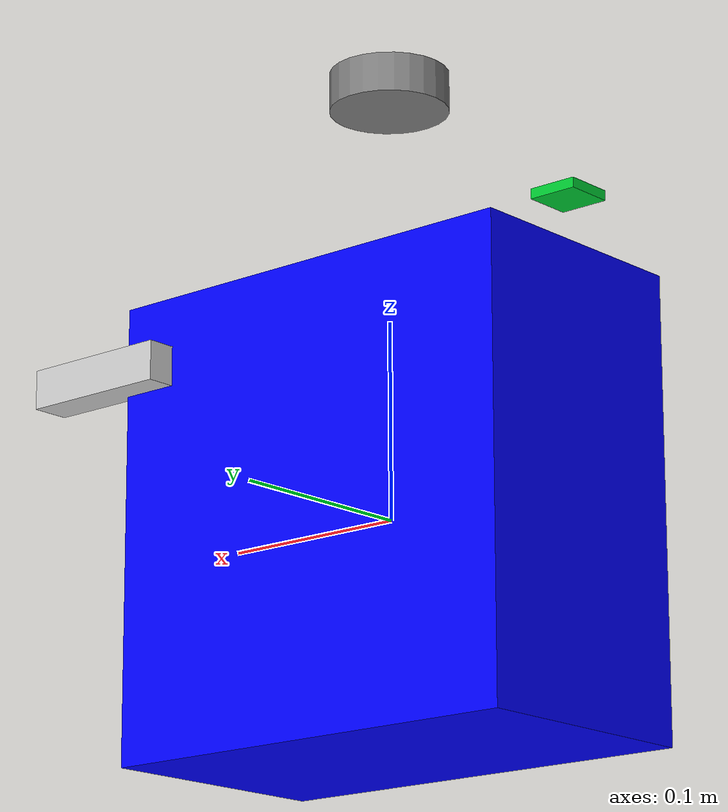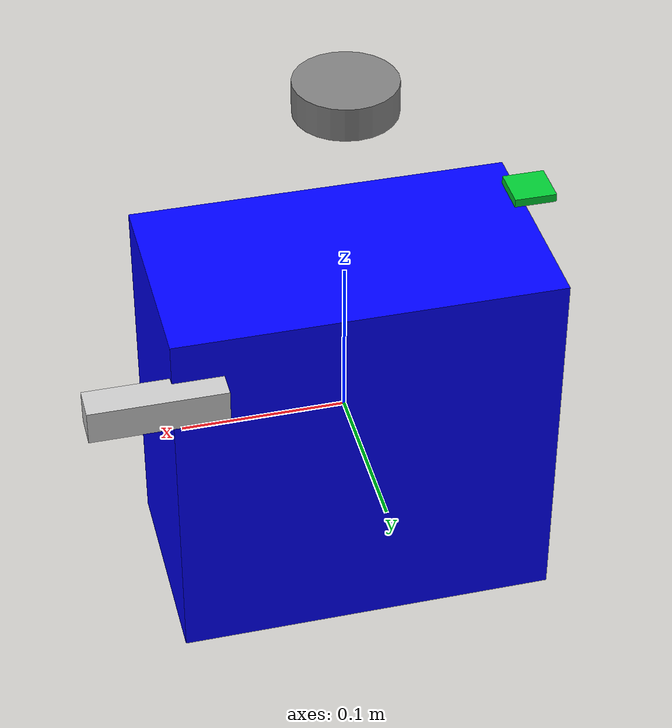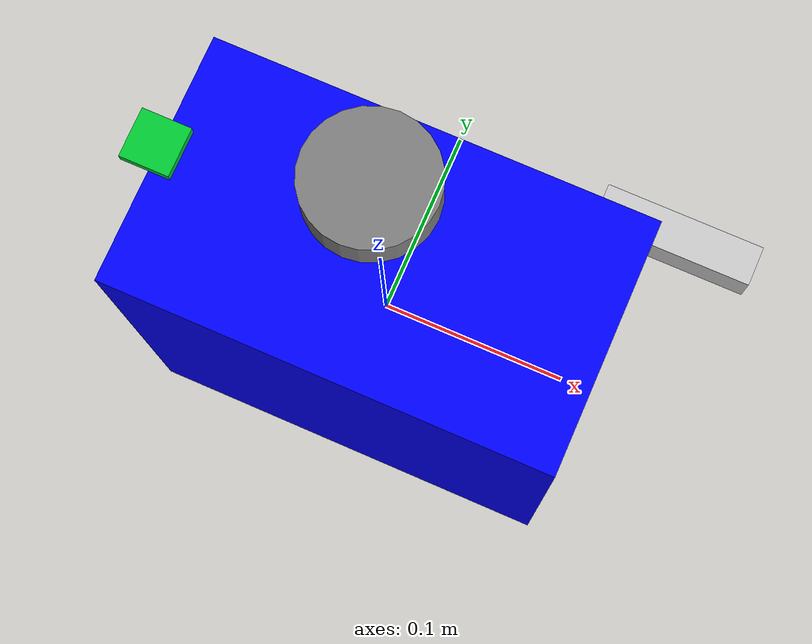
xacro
<?xml version="1.0"?>
<robot name="elegoo_minimal" xmlns:xacro="http://www.ros.org/wiki/xacro">

  <xacro:property name="chassis_length" value="0.23"/>
  <xacro:property name="chassis_width"  value="0.13"/>
  <xacro:property name="chassis_height" value="0.23"/>

  <xacro:property name="camera_x" value="0.125"/>
  <xacro:property name="camera_y" value="0.07"/>
  <xacro:property name="camera_z" value="0.08"/>
  <xacro:property name="camera_roll"  value="0.0"/>
  <xacro:property name="camera_pitch" value="0.0"/>
  <xacro:property name="camera_yaw"   value="0.0"/>

  <xacro:property name="imu_x" value="-0.11"/>
  <xacro:property name="imu_y" value="0.00"/>
  <xacro:property name="imu_z" value="0.14"/>
  <xacro:property name="imu_roll"  value="0.0"/>
  <xacro:property name="imu_pitch" value="0.0"/>
  <xacro:property name="imu_yaw"   value="0.0"/>

  <xacro:property name="laser_x" value="0.00"/>
  <xacro:property name="laser_y" value="0.00"/>
  <xacro:property name="laser_z" value="0.22"/>
  <xacro:property name="laser_roll"  value="0.0"/>
  <xacro:property name="laser_pitch" value="0.0"/>
  <xacro:property name="laser_yaw"   value="0.0"/>
  <!-- RPLidar is mounted 180 degrees from the robot's +x/front direction. -->
  <xacro:property name="laser_yaw"   value="3.141592653589793"/>

  <!-- Chassis -->
  <link name="base_link">
    <visual>
      <origin xyz="0 0 0" rpy="0 0 0"/>
      <geometry>
        <box size="${chassis_length} ${chassis_width} ${chassis_height}"/>
      </geometry>
      <material name="blue">
        <color rgba="0 0 1 1"/>
      </material>
    </visual>
  </link>

  <!-- LiDAR link: matches your rplidar frame_id:=laser -->
  <link name="laser">
    <visual>
      <origin xyz="0 0 0" rpy="0 0 0"/>
      <geometry>
        <cylinder radius="0.03" length="0.02"/>
      </geometry>
      <material name="grey">
        <color rgba="0.5 0.5 0.5 1"/>
      </material>
    </visual>
  </link>

  <joint name="laser_joint" type="fixed">
    <parent link="base_link"/>
    <child link="laser"/>
    <origin xyz="${laser_x} ${laser_y} ${laser_z}"
            rpy="${laser_roll} ${laser_pitch} ${laser_yaw}"/>
  </joint>

  <!-- Realsense camera base frame -->
  <link name="camera_link">
    <visual>
      <origin xyz="0 0 0" rpy="0 0 0"/>
      <geometry>
        <box size="0.08 0.02 0.02"/>
      </geometry>
      <material name="silver">
        <color rgba="0.8 0.8 0.8 1"/>
      </material>
    </visual>
  </link>

  <joint name="camera_joint" type="fixed">
    <parent link="base_link"/>
    <child link="camera_link"/>
    <origin xyz="${camera_x} ${camera_y} ${camera_z}"
            rpy="${camera_roll} ${camera_pitch} ${camera_yaw}"/>
  </joint>

  <!-- IMU frame: matches cmdvel_to_arduino.py imu_frame:=imu_link -->
  <link name="imu_link">
    <visual>
      <origin xyz="0 0 0" rpy="0 0 0"/>
      <geometry>
        <box size="0.025 0.025 0.005"/>
      </geometry>
      <material name="green">
        <color rgba="0 0.8 0.2 1"/>
      </material>
    </visual>
  </link>

  <joint name="imu_joint" type="fixed">
    <parent link="base_link"/>
    <child link="imu_link"/>
    <origin xyz="${imu_x} ${imu_y} ${imu_z}"
            rpy="${imu_roll} ${imu_pitch} ${imu_yaw}"/>
  </joint>

</robot>
